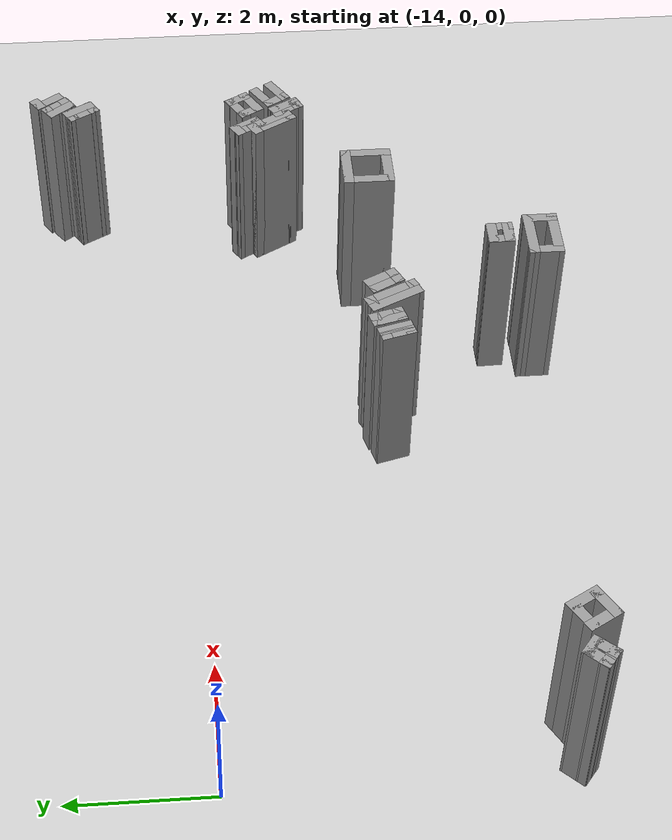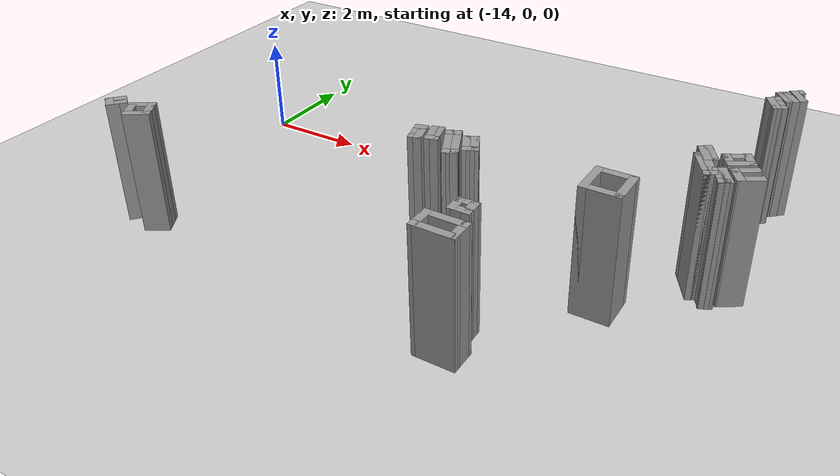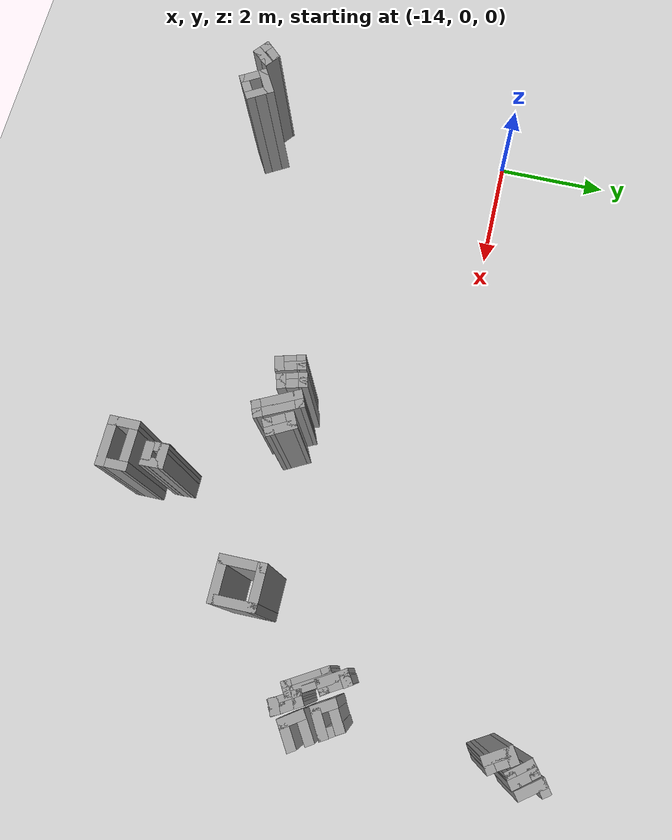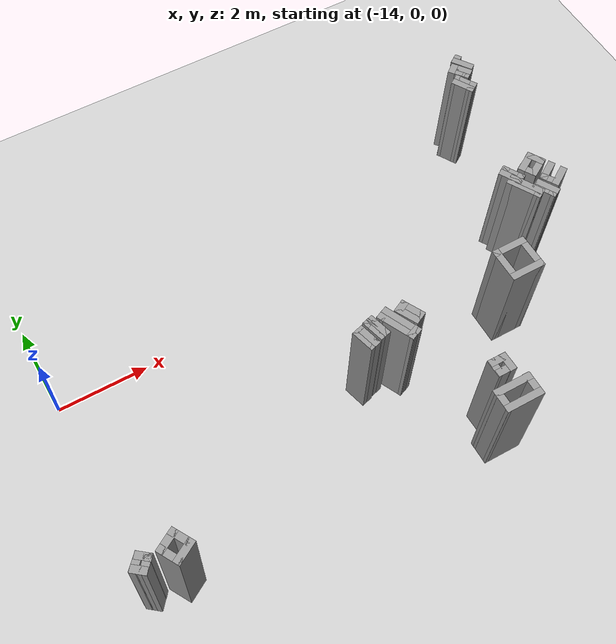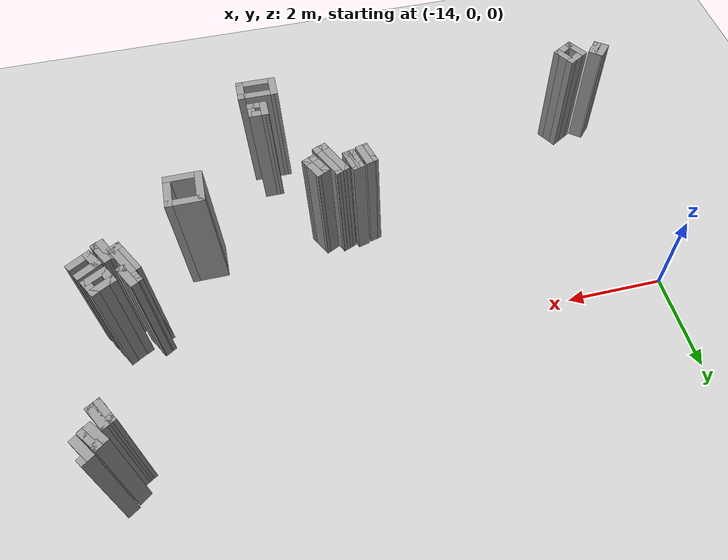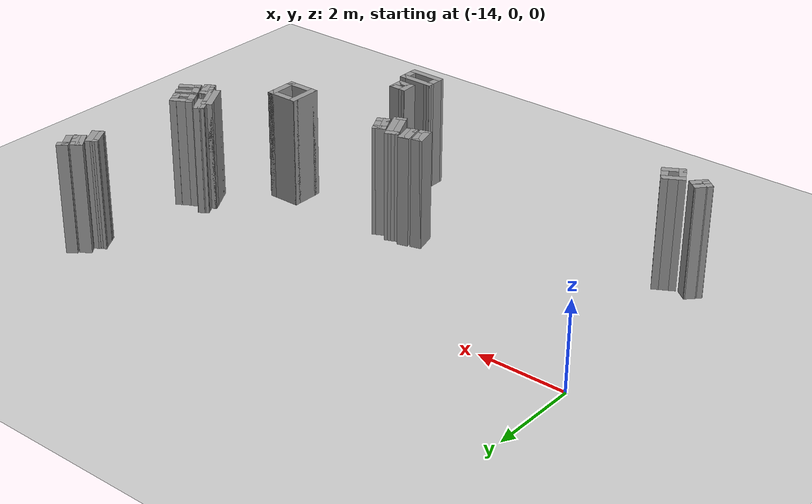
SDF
<sdf version="1.7">
 <world name="default">
  <include><uri>model://sun</uri></include>
  <include><uri>model://ground_plane</uri></include>
  <model name="iitj">
   <pose>-3.03973 -1.21048 0 0 -0 0</pose>
   <link name="Wall_103">
    <collision name="Wall_103_Collision">
     <geometry><box><size>0.5 0.15 2.5</size></box></geometry>
     <pose>0 0 1.25 0 -0 0</pose>
    </collision>
    <visual name="Wall_103_Visual">
     <pose>0 0 1.25 0 -0 0</pose>
     <geometry><box><size>0.5 0.15 2.5</size></box></geometry>
     <material>
      <script><uri>file://media/materials/scripts/gazebo.material</uri><name>Gazebo/Grey</name></script>
      <ambient>1 1 1 1</ambient>
     </material>
     <meta><layer>0</layer></meta>
    </visual>
    <pose>-5.3281 -1.4758 0 0 -0 -1.309</pose>
   </link>
   <link name="Wall_105">
    <collision name="Wall_105_Collision">
     <geometry><box><size>0.25 0.15 2.5</size></box></geometry>
     <pose>0 0 1.25 0 -0 0</pose>
    </collision>
    <visual name="Wall_105_Visual">
     <pose>0 0 1.25 0 -0 0</pose>
     <geometry><box><size>0.25 0.15 2.5</size></box></geometry>
     <material>
      <script><uri>file://media/materials/scripts/gazebo.material</uri><name>Gazebo/Grey</name></script>
      <ambient>1 1 1 1</ambient>
     </material>
     <meta><layer>0</layer></meta>
    </visual>
    <pose>-5.33111 -1.65777 0 0 -0 -2.87979</pose>
   </link>
   <link name="Wall_107">
    <collision name="Wall_107_Collision">
     <geometry><box><size>0.25 0.15 2.5</size></box></geometry>
     <pose>0 0 1.25 0 -0 0</pose>
    </collision>
    <visual name="Wall_107_Visual">
     <pose>0 0 1.25 0 -0 0</pose>
     <geometry><box><size>0.25 0.15 2.5</size></box></geometry>
     <material>
      <script><uri>file://media/materials/scripts/gazebo.material</uri><name>Gazebo/Grey</name></script>
      <ambient>1 1 1 1</ambient>
     </material>
     <meta><layer>0</layer></meta>
    </visual>
    <pose>-5.42169 -1.3197 0 0 -0 -2.87979</pose>
   </link>
   <link name="Wall_112">
    <collision name="Wall_112_Collision">
     <geometry><box><size>0.5 0.15 2.5</size></box></geometry>
     <pose>0 0 1.25 0 -0 0</pose>
    </collision>
    <visual name="Wall_112_Visual">
     <pose>0 0 1.25 0 -0 0</pose>
     <geometry><box><size>0.5 0.15 2.5</size></box></geometry>
     <material>
      <script><uri>file://media/materials/scripts/gazebo.material</uri><name>Gazebo/Grey</name></script>
      <ambient>1 1 1 1</ambient>
     </material>
     <meta><layer>0</layer></meta>
    </visual>
    <pose>-5.4247 -1.50168 0 0 -0 -1.309</pose>
   </link>
   <link name="Wall_116">
    <collision name="Wall_116_Collision">
     <geometry><box><size>0.5 0.15 2.5</size></box></geometry>
     <pose>0 0 1.25 0 -0 0</pose>
    </collision>
    <visual name="Wall_116_Visual">
     <pose>0 0 1.25 0 -0 0</pose>
     <geometry><box><size>0.5 0.15 2.5</size></box></geometry>
     <material>
      <script><uri>file://media/materials/scripts/gazebo.material</uri><name>Gazebo/Grey</name></script>
      <ambient>1 1 1 1</ambient>
     </material>
     <meta><layer>0</layer></meta>
    </visual>
    <pose>-5.14754 -1.40825 0 0 -0 -1.309</pose>
   </link>
   <link name="Wall_119">
    <collision name="Wall_119_Collision">
     <geometry><box><size>0.25 0.15 2.5</size></box></geometry>
     <pose>0 0 1.25 0 -0 0</pose>
    </collision>
    <visual name="Wall_119_Visual">
     <pose>0 0 1.25 0 -0 0</pose>
     <geometry><box><size>0.25 0.15 2.5</size></box></geometry>
     <material>
      <script><uri>file://media/materials/scripts/gazebo.material</uri><name>Gazebo/Grey</name></script>
      <ambient>1 1 1 1</ambient>
     </material>
     <meta><layer>0</layer></meta>
    </visual>
    <pose>-5.05395 -1.56434 0 0 -0 0.261799</pose>
   </link>
   <link name="Wall_122">
    <collision name="Wall_122_Collision">
     <geometry><box><size>0.25 0.15 2.5</size></box></geometry>
     <pose>0 0 1.25 0 -0 0</pose>
    </collision>
    <visual name="Wall_122_Visual">
     <pose>0 0 1.25 0 -0 0</pose>
     <geometry><box><size>0.25 0.15 2.5</size></box></geometry>
     <material>
      <script><uri>file://media/materials/scripts/gazebo.material</uri><name>Gazebo/Grey</name></script>
      <ambient>1 1 1 1</ambient>
     </material>
     <meta><layer>0</layer></meta>
    </visual>
    <pose>-5.14454 -1.22627 0 0 -0 0.261799</pose>
   </link>
   <link name="Wall_125">
    <collision name="Wall_125_Collision">
     <geometry><box><size>0.5 0.15 2.5</size></box></geometry>
     <pose>0 0 1.25 0 -0 0</pose>
    </collision>
    <visual name="Wall_125_Visual">
     <pose>0 0 1.25 0 -0 0</pose>
     <geometry><box><size>0.5 0.15 2.5</size></box></geometry>
     <material>
      <script><uri>file://media/materials/scripts/gazebo.material</uri><name>Gazebo/Grey</name></script>
      <ambient>1 1 1 1</ambient>
     </material>
     <meta><layer>0</layer></meta>
    </visual>
    <pose>-5.05095 -1.38237 0 0 -0 -1.309</pose>
   </link>
   <link name="Wall_133">
    <collision name="Wall_133_Collision">
     <geometry><box><size>0.295025 0.15 2.5</size></box></geometry>
     <pose>0 0 1.25 0 -0 0</pose>
    </collision>
    <visual name="Wall_133_Visual">
     <pose>0 0 1.25 0 -0 0</pose>
     <geometry><box><size>0.295025 0.15 2.5</size></box></geometry>
     <material>
      <script><uri>file://media/materials/scripts/gazebo.material</uri><name>Gazebo/Grey</name></script>
      <ambient>1 1 1 1</ambient>
     </material>
     <meta><layer>0</layer></meta>
    </visual>
    <pose>-4.82254 -1.21507 0 0 -0 0.398916</pose>
   </link>
   <link name="Wall_134">
    <collision name="Wall_134_Collision">
     <geometry><box><size>0.830581 0.15 2.5</size></box></geometry>
     <pose>0 0 1.25 0 -0 0</pose>
    </collision>
    <visual name="Wall_134_Visual">
     <pose>0 0 1.25 0 -0 0</pose>
     <geometry><box><size>0.830581 0.15 2.5</size></box></geometry>
     <material>
      <script><uri>file://media/materials/scripts/gazebo.material</uri><name>Gazebo/Grey</name></script>
      <ambient>1 1 1 1</ambient>
     </material>
     <meta><layer>0</layer></meta>
    </visual>
    <pose>-4.61057 -1.49469 0 0 -0 -1.13012</pose>
   </link>
   <link name="Wall_136">
    <collision name="Wall_136_Collision">
     <geometry><box><size>0.290148 0.15 2.5</size></box></geometry>
     <pose>0 0 1.25 0 -0 0</pose>
    </collision>
    <visual name="Wall_136_Visual">
     <pose>0 0 1.25 0 -0 0</pose>
     <geometry><box><size>0.290148 0.15 2.5</size></box></geometry>
     <material>
      <script><uri>file://media/materials/scripts/gazebo.material</uri><name>Gazebo/Grey</name></script>
      <ambient>1 1 1 1</ambient>
     </material>
     <meta><layer>0</layer></meta>
    </visual>
    <pose>-4.53037 -1.82503 0 0 -0 -2.75688</pose>
   </link>
   <link name="Wall_143">
    <collision name="Wall_143_Collision">
     <geometry><box><size>0.825451 0.15 2.5</size></box></geometry>
     <pose>0 0 1.25 0 -0 0</pose>
    </collision>
    <visual name="Wall_143_Visual">
     <pose>0 0 1.25 0 -0 0</pose>
     <geometry><box><size>0.825451 0.15 2.5</size></box></geometry>
     <material>
      <script><uri>file://media/materials/scripts/gazebo.material</uri><name>Gazebo/Grey</name></script>
      <ambient>1 1 1 1</ambient>
     </material>
     <meta><layer>0</layer></meta>
    </visual>
    <pose>-4.74235 -1.54728 0 0 -0 2.02119</pose>
   </link>
   <link name="Wall_149">
    <collision name="Wall_149_Collision">
     <geometry><box><size>0.293388 0.15 2.5</size></box></geometry>
     <pose>0 0 1.25 0 -0 0</pose>
    </collision>
    <visual name="Wall_149_Visual">
     <pose>0 0 1.25 0 -0 0</pose>
     <geometry><box><size>0.293388 0.15 2.5</size></box></geometry>
     <material>
      <script><uri>file://media/materials/scripts/gazebo.material</uri><name>Gazebo/Grey</name></script>
      <ambient>1 1 1 1</ambient>
     </material>
     <meta><layer>0</layer></meta>
    </visual>
    <pose>-4.45634 -1.2476 0 0 -0 -2.68679</pose>
   </link>
   <link name="Wall_152">
    <collision name="Wall_152_Collision">
     <geometry><box><size>0.521208 0.15 2.5</size></box></geometry>
     <pose>0 0 1.25 0 -0 0</pose>
    </collision>
    <visual name="Wall_152_Visual">
     <pose>0 0 1.25 0 -0 0</pose>
     <geometry><box><size>0.521208 0.15 2.5</size></box></geometry>
     <material>
      <script><uri>file://media/materials/scripts/gazebo.material</uri><name>Gazebo/Grey</name></script>
      <ambient>1 1 1 1</ambient>
     </material>
     <meta><layer>0</layer></meta>
    </visual>
    <pose>-4.30606 -1.38065 0 0 -0 -1.08977</pose>
   </link>
   <link name="Wall_155">
    <collision name="Wall_155_Collision">
     <geometry><box><size>0.293388 0.15 2.5</size></box></geometry>
     <pose>0 0 1.25 0 -0 0</pose>
    </collision>
    <visual name="Wall_155_Visual">
     <pose>0 0 1.25 0 -0 0</pose>
     <geometry><box><size>0.293388 0.15 2.5</size></box></geometry>
     <material>
      <script><uri>file://media/materials/scripts/gazebo.material</uri><name>Gazebo/Grey</name></script>
      <ambient>1 1 1 1</ambient>
     </material>
     <meta><layer>0</layer></meta>
    </visual>
    <pose>-4.28459 -1.57668 0 0 -0 -2.68679</pose>
   </link>
   <link name="Wall_158">
    <collision name="Wall_158_Collision">
     <geometry><box><size>0.518333 0.15 2.5</size></box></geometry>
     <pose>0 0 1.25 0 -0 0</pose>
    </collision>
    <visual name="Wall_158_Visual">
     <pose>0 0 1.25 0 -0 0</pose>
     <geometry><box><size>0.518333 0.15 2.5</size></box></geometry>
     <material>
      <script><uri>file://media/materials/scripts/gazebo.material</uri><name>Gazebo/Grey</name></script>
      <ambient>1 1 1 1</ambient>
     </material>
     <meta><layer>0</layer></meta>
    </visual>
    <pose>-4.43487 -1.44526 0 0 -0 -1.08569</pose>
   </link>
   <link name="Wall_160">
    <collision name="Wall_160_Collision">
     <geometry><box><size>0.313829 0.15 2.5</size></box></geometry>
     <pose>0 0 1.25 0 -0 0</pose>
    </collision>
    <visual name="Wall_160_Visual">
     <pose>0 0 1.25 0 -0 0</pose>
     <geometry><box><size>0.313829 0.15 2.5</size></box></geometry>
     <material>
      <script><uri>file://media/materials/scripts/gazebo.material</uri><name>Gazebo/Grey</name></script>
      <ambient>1 1 1 1</ambient>
     </material>
     <meta><layer>0</layer></meta>
    </visual>
    <pose>-10.952 -3.37651 0 0 -0 -0.664496</pose>
   </link>
   <link name="Wall_161">
    <collision name="Wall_161_Collision">
     <geometry><box><size>0.385698 0.15 2.5</size></box></geometry>
     <pose>0 0 1.25 0 -0 0</pose>
    </collision>
    <visual name="Wall_161_Visual">
     <pose>0 0 1.25 0 -0 0</pose>
     <geometry><box><size>0.385698 0.15 2.5</size></box></geometry>
     <material>
      <script><uri>file://media/materials/scripts/gazebo.material</uri><name>Gazebo/Grey</name></script>
      <ambient>1 1 1 1</ambient>
     </material>
     <meta><layer>0</layer></meta>
    </visual>
    <pose>-10.8056 -3.34282 0 0 -0 0.869723</pose>
   </link>
   <link name="Wall_162">
    <collision name="Wall_162_Collision">
     <geometry><box><size>0.314597 0.15 2.5</size></box></geometry>
     <pose>0 0 1.25 0 -0 0</pose>
    </collision>
    <visual name="Wall_162_Visual">
     <pose>0 0 1.25 0 -0 0</pose>
     <geometry><box><size>0.314597 0.15 2.5</size></box></geometry>
     <material>
      <script><uri>file://media/materials/scripts/gazebo.material</uri><name>Gazebo/Grey</name></script>
      <ambient>1 1 1 1</ambient>
     </material>
     <meta><layer>0</layer></meta>
    </visual>
    <pose>-10.7888 -3.20202 0 0 -0 2.4771</pose>
   </link>
   <link name="Wall_163">
    <collision name="Wall_163_Collision">
     <geometry><box><size>0.381027 0.15 2.5</size></box></geometry>
     <pose>0 0 1.25 0 -0 0</pose>
    </collision>
    <visual name="Wall_163_Visual">
     <pose>0 0 1.25 0 -0 0</pose>
     <geometry><box><size>0.381027 0.15 2.5</size></box></geometry>
     <material>
      <script><uri>file://media/materials/scripts/gazebo.material</uri><name>Gazebo/Grey</name></script>
      <ambient>1 1 1 1</ambient>
     </material>
     <meta><layer>0</layer></meta>
    </visual>
    <pose>-10.938 -3.2357 0 0 -0 -2.32182</pose>
   </link>
   <link name="Wall_165">
    <collision name="Wall_165_Collision">
     <geometry><box><size>0.5 0.15 2.5</size></box></geometry>
     <pose>0 0 1.25 0 -0 0</pose>
    </collision>
    <visual name="Wall_165_Visual">
     <pose>0 0 1.25 0 -0 0</pose>
     <geometry><box><size>0.5 0.15 2.5</size></box></geometry>
     <material>
      <script><uri>file://media/materials/scripts/gazebo.material</uri><name>Gazebo/Grey</name></script>
      <ambient>1 1 1 1</ambient>
     </material>
     <meta><layer>0</layer></meta>
    </visual>
    <pose>-3.87395 -3.78493 0 0 -0 -1.5708</pose>
   </link>
   <link name="Wall_166">
    <collision name="Wall_166_Collision">
     <geometry><box><size>0.817402 0.15 2.5</size></box></geometry>
     <pose>0 0 1.25 0 -0 0</pose>
    </collision>
    <visual name="Wall_166_Visual">
     <pose>0 0 1.25 0 -0 0</pose>
     <geometry><box><size>0.817402 0.15 2.5</size></box></geometry>
     <material>
      <script><uri>file://media/materials/scripts/gazebo.material</uri><name>Gazebo/Grey</name></script>
      <ambient>1 1 1 1</ambient>
     </material>
     <meta><layer>0</layer></meta>
    </visual>
    <pose>-3.54026 -3.96274 0 0 -0 -0.008413</pose>
   </link>
   <link name="Wall_167">
    <collision name="Wall_167_Collision">
     <geometry><box><size>0.5 0.15 2.5</size></box></geometry>
     <pose>0 0 1.25 0 -0 0</pose>
    </collision>
    <visual name="Wall_167_Visual">
     <pose>0 0 1.25 0 -0 0</pose>
     <geometry><box><size>0.5 0.15 2.5</size></box></geometry>
     <material>
      <script><uri>file://media/materials/scripts/gazebo.material</uri><name>Gazebo/Grey</name></script>
      <ambient>1 1 1 1</ambient>
     </material>
     <meta><layer>0</layer></meta>
    </visual>
    <pose>-3.20657 -3.78493 0 0 -0 1.5708</pose>
   </link>
   <link name="Wall_168">
    <collision name="Wall_168_Collision">
     <geometry><box><size>0.817402 0.15 2.5</size></box></geometry>
     <pose>0 0 1.25 0 -0 0</pose>
    </collision>
    <visual name="Wall_168_Visual">
     <pose>0 0 1.25 0 -0 0</pose>
     <geometry><box><size>0.817402 0.15 2.5</size></box></geometry>
     <material>
      <script><uri>file://media/materials/scripts/gazebo.material</uri><name>Gazebo/Grey</name></script>
      <ambient>1 1 1 1</ambient>
     </material>
     <meta><layer>0</layer></meta>
    </visual>
    <pose>-3.54026 -3.61274 0 0 -0 3.13318</pose>
   </link>
   <link name="Wall_170">
    <collision name="Wall_170_Collision">
     <geometry><box><size>0.379211 0.15 2.5</size></box></geometry>
     <pose>0 0 1.25 0 -0 0</pose>
    </collision>
    <visual name="Wall_170_Visual">
     <pose>0 0 1.25 0 -0 0</pose>
     <geometry><box><size>0.379211 0.15 2.5</size></box></geometry>
     <material>
      <script><uri>file://media/materials/scripts/gazebo.material</uri><name>Gazebo/Grey</name></script>
      <ambient>1 1 1 1</ambient>
     </material>
     <meta><layer>0</layer></meta>
    </visual>
    <pose>-3.61336 -3.17986 0 0 -0 -1.5463</pose>
   </link>
   <link name="Wall_171">
    <collision name="Wall_171_Collision">
     <geometry><box><size>0.394326 0.15 2.5</size></box></geometry>
     <pose>0 0 1.25 0 -0 0</pose>
    </collision>
    <visual name="Wall_171_Visual">
     <pose>0 0 1.25 0 -0 0</pose>
     <geometry><box><size>0.394326 0.15 2.5</size></box></geometry>
     <material>
      <script><uri>file://media/materials/scripts/gazebo.material</uri><name>Gazebo/Grey</name></script>
      <ambient>1 1 1 1</ambient>
     </material>
     <meta><layer>0</layer></meta>
    </visual>
    <pose>-3.47766 -3.29443 0 0 -0 0</pose>
   </link>
   <link name="Wall_172">
    <collision name="Wall_172_Collision">
     <geometry><box><size>0.379211 0.15 2.5</size></box></geometry>
     <pose>0 0 1.25 0 -0 0</pose>
    </collision>
    <visual name="Wall_172_Visual">
     <pose>0 0 1.25 0 -0 0</pose>
     <geometry><box><size>0.379211 0.15 2.5</size></box></geometry>
     <material>
      <script><uri>file://media/materials/scripts/gazebo.material</uri><name>Gazebo/Grey</name></script>
      <ambient>1 1 1 1</ambient>
     </material>
     <meta><layer>0</layer></meta>
    </visual>
    <pose>-3.35831 -3.18548 0 0 -0 1.59529</pose>
   </link>
   <link name="Wall_173">
    <collision name="Wall_173_Collision">
     <geometry><box><size>0.394326 0.15 2.5</size></box></geometry>
     <pose>0 0 1.25 0 -0 0</pose>
    </collision>
    <visual name="Wall_173_Visual">
     <pose>0 0 1.25 0 -0 0</pose>
     <geometry><box><size>0.394326 0.15 2.5</size></box></geometry>
     <material>
      <script><uri>file://media/materials/scripts/gazebo.material</uri><name>Gazebo/Grey</name></script>
      <ambient>1 1 1 1</ambient>
     </material>
     <meta><layer>0</layer></meta>
    </visual>
    <pose>-3.48328 -3.06529 0 0 -0 3.14159</pose>
   </link>
   <link name="Wall_175">
    <collision name="Wall_175_Collision">
     <geometry><box><size>0.75 0.15 2.5</size></box></geometry>
     <pose>0 0 1.25 0 -0 0</pose>
    </collision>
    <visual name="Wall_175_Visual">
     <pose>0 0 1.25 0 -0 0</pose>
     <geometry><box><size>0.75 0.15 2.5</size></box></geometry>
     <material>
      <script><uri>file://media/materials/scripts/gazebo.material</uri><name>Gazebo/Grey</name></script>
      <ambient>1 1 1 1</ambient>
     </material>
     <meta><layer>0</layer></meta>
    </visual>
    <pose>-2.16502 -1.42542 0 0 -0 -1.5708</pose>
   </link>
   <link name="Wall_176">
    <collision name="Wall_176_Collision">
     <geometry><box><size>0.75 0.15 2.5</size></box></geometry>
     <pose>0 0 1.25 0 -0 0</pose>
    </collision>
    <visual name="Wall_176_Visual">
     <pose>0 0 1.25 0 -0 0</pose>
     <geometry><box><size>0.75 0.15 2.5</size></box></geometry>
     <material>
      <script><uri>file://media/materials/scripts/gazebo.material</uri><name>Gazebo/Grey</name></script>
      <ambient>1 1 1 1</ambient>
     </material>
     <meta><layer>0</layer></meta>
    </visual>
    <pose>-1.86502 -1.72542 0 0 -0 0</pose>
   </link>
   <link name="Wall_177">
    <collision name="Wall_177_Collision">
     <geometry><box><size>0.75 0.15 2.5</size></box></geometry>
     <pose>0 0 1.25 0 -0 0</pose>
    </collision>
    <visual name="Wall_177_Visual">
     <pose>0 0 1.25 0 -0 0</pose>
     <geometry><box><size>0.75 0.15 2.5</size></box></geometry>
     <material>
      <script><uri>file://media/materials/scripts/gazebo.material</uri><name>Gazebo/Grey</name></script>
      <ambient>1 1 1 1</ambient>
     </material>
     <meta><layer>0</layer></meta>
    </visual>
    <pose>-1.56502 -1.42542 0 0 -0 1.5708</pose>
   </link>
   <link name="Wall_178">
    <collision name="Wall_178_Collision">
     <geometry><box><size>0.75 0.15 2.5</size></box></geometry>
     <pose>0 0 1.25 0 -0 0</pose>
    </collision>
    <visual name="Wall_178_Visual">
     <pose>0 0 1.25 0 -0 0</pose>
     <geometry><box><size>0.75 0.15 2.5</size></box></geometry>
     <material>
      <script><uri>file://media/materials/scripts/gazebo.material</uri><name>Gazebo/Grey</name></script>
      <ambient>1 1 1 1</ambient>
     </material>
     <meta><layer>0</layer></meta>
    </visual>
    <pose>-1.86502 -1.12542 0 0 -0 3.14159</pose>
   </link>
   <link name="Wall_266">
    <collision name="Wall_266_Collision">
     <geometry><box><size>0.75 0.15 2.5</size></box></geometry>
     <pose>0 0 1.25 0 -0 0</pose>
    </collision>
    <visual name="Wall_266_Visual">
     <pose>0 0 1.25 0 -0 0</pose>
     <geometry><box><size>0.75 0.15 2.5</size></box></geometry>
     <material>
      <script><uri>file://media/materials/scripts/gazebo.material</uri><name>Gazebo/Grey</name></script>
      <ambient>1 1 1 1</ambient>
     </material>
     <meta><layer>0</layer></meta>
    </visual>
    <pose>-0.680598 -0.051852 0 0 -0 -1.0472</pose>
   </link>
   <link name="Wall_268">
    <collision name="Wall_268_Collision">
     <geometry><box><size>0.25 0.15 2.5</size></box></geometry>
     <pose>0 0 1.25 0 -0 0</pose>
    </collision>
    <visual name="Wall_268_Visual">
     <pose>0 0 1.25 0 -0 0</pose>
     <geometry><box><size>0.25 0.15 2.5</size></box></geometry>
     <material>
      <script><uri>file://media/materials/scripts/gazebo.material</uri><name>Gazebo/Grey</name></script>
      <ambient>1 1 1 1</ambient>
     </material>
     <meta><layer>0</layer></meta>
    </visual>
    <pose>-0.873899 0.182956 0 0 -0 -2.61799</pose>
   </link>
   <link name="Wall_270">
    <collision name="Wall_270_Collision">
     <geometry><box><size>0.25 0.15 2.5</size></box></geometry>
     <pose>0 0 1.25 0 -0 0</pose>
    </collision>
    <visual name="Wall_270_Visual">
     <pose>0 0 1.25 0 -0 0</pose>
     <geometry><box><size>0.25 0.15 2.5</size></box></geometry>
     <material>
      <script><uri>file://media/materials/scripts/gazebo.material</uri><name>Gazebo/Grey</name></script>
      <ambient>1 1 1 1</ambient>
     </material>
     <meta><layer>0</layer></meta>
    </visual>
    <pose>-0.573899 -0.336659 0 0 -0 -2.61799</pose>
   </link>
   <link name="Wall_274">
    <collision name="Wall_274_Collision">
     <geometry><box><size>0.75 0.15 2.5</size></box></geometry>
     <pose>0 0 1.25 0 -0 0</pose>
    </collision>
    <visual name="Wall_274_Visual">
     <pose>0 0 1.25 0 -0 0</pose>
     <geometry><box><size>0.75 0.15 2.5</size></box></geometry>
     <material>
      <script><uri>file://media/materials/scripts/gazebo.material</uri><name>Gazebo/Grey</name></script>
      <ambient>1 1 1 1</ambient>
     </material>
     <meta><layer>0</layer></meta>
    </visual>
    <pose>-0.7672 -0.101852 0 0 -0 -1.0472</pose>
   </link>
   <link name="Wall_276">
    <collision name="Wall_276_Collision">
     <geometry><box><size>0.5 0.15 2.5</size></box></geometry>
     <pose>0 0 1.25 0 -0 0</pose>
    </collision>
    <visual name="Wall_276_Visual">
     <pose>0 0 1.25 0 -0 0</pose>
     <geometry><box><size>0.5 0.15 2.5</size></box></geometry>
     <material>
      <script><uri>file://media/materials/scripts/gazebo.material</uri><name>Gazebo/Grey</name></script>
      <ambient>1 1 1 1</ambient>
     </material>
     <meta><layer>0</layer></meta>
    </visual>
    <pose>-0.845379 0.266347 0 0 -0 -1.0472</pose>
   </link>
   <link name="Wall_277">
    <collision name="Wall_277_Collision">
     <geometry><box><size>0.252797 0.15 2.5</size></box></geometry>
     <pose>0 0 1.25 0 -0 0</pose>
    </collision>
    <visual name="Wall_277_Visual">
     <pose>0 0 1.25 0 -0 0</pose>
     <geometry><box><size>0.252797 0.15 2.5</size></box></geometry>
     <material>
      <script><uri>file://media/materials/scripts/gazebo.material</uri><name>Gazebo/Grey</name></script>
      <ambient>1 1 1 1</ambient>
     </material>
     <meta><layer>0</layer></meta>
    </visual>
    <pose>-0.714577 0.142484 0 0 -0 0.568966</pose>
   </link>
   <link name="Wall_278">
    <collision name="Wall_278_Collision">
     <geometry><box><size>0.5 0.15 2.5</size></box></geometry>
     <pose>0 0 1.25 0 -0 0</pose>
    </collision>
    <visual name="Wall_278_Visual">
     <pose>0 0 1.25 0 -0 0</pose>
     <geometry><box><size>0.5 0.15 2.5</size></box></geometry>
     <material>
      <script><uri>file://media/materials/scripts/gazebo.material</uri><name>Gazebo/Grey</name></script>
      <ambient>1 1 1 1</ambient>
     </material>
     <meta><layer>0</layer></meta>
    </visual>
    <pose>-0.764159 0.32173 0 0 -0 2.0944</pose>
   </link>
   <link name="Wall_279">
    <collision name="Wall_279_Collision">
     <geometry><box><size>0.252797 0.15 2.5</size></box></geometry>
     <pose>0 0 1.25 0 -0 0</pose>
    </collision>
    <visual name="Wall_279_Visual">
     <pose>0 0 1.25 0 -0 0</pose>
     <geometry><box><size>0.252797 0.15 2.5</size></box></geometry>
     <material>
      <script><uri>file://media/materials/scripts/gazebo.material</uri><name>Gazebo/Grey</name></script>
      <ambient>1 1 1 1</ambient>
     </material>
     <meta><layer>0</layer></meta>
    </visual>
    <pose>-0.889577 0.445593 0 0 -0 -2.57263</pose>
   </link>
   <link name="Wall_281">
    <collision name="Wall_281_Collision">
     <geometry><box><size>0.5 0.15 2.5</size></box></geometry>
     <pose>0 0 1.25 0 -0 0</pose>
    </collision>
    <visual name="Wall_281_Visual">
     <pose>0 0 1.25 0 -0 0</pose>
     <geometry><box><size>0.5 0.15 2.5</size></box></geometry>
     <material>
      <script><uri>file://media/materials/scripts/gazebo.material</uri><name>Gazebo/Grey</name></script>
      <ambient>1 1 1 1</ambient>
     </material>
     <meta><layer>0</layer></meta>
    </visual>
    <pose>-0.337178 -0.296047 0 0 -0 -1.0472</pose>
   </link>
   <link name="Wall_282">
    <collision name="Wall_282_Collision">
     <geometry><box><size>0.248039 0.15 2.5</size></box></geometry>
     <pose>0 0 1.25 0 -0 0</pose>
    </collision>
    <visual name="Wall_282_Visual">
     <pose>0 0 1.25 0 -0 0</pose>
     <geometry><box><size>0.248039 0.15 2.5</size></box></geometry>
     <material>
      <script><uri>file://media/materials/scripts/gazebo.material</uri><name>Gazebo/Grey</name></script>
      <ambient>1 1 1 1</ambient>
     </material>
     <meta><layer>0</layer></meta>
    </visual>
    <pose>-0.29905 -0.46653 0 0 -0 -2.74599</pose>
   </link>
   <link name="Wall_283">
    <collision name="Wall_283_Collision">
     <geometry><box><size>0.5 0.15 2.5</size></box></geometry>
     <pose>0 0 1.25 0 -0 0</pose>
    </collision>
    <visual name="Wall_283_Visual">
     <pose>0 0 1.25 0 -0 0</pose>
     <geometry><box><size>0.5 0.15 2.5</size></box></geometry>
     <material>
      <script><uri>file://media/materials/scripts/gazebo.material</uri><name>Gazebo/Grey</name></script>
      <ambient>1 1 1 1</ambient>
     </material>
     <meta><layer>0</layer></meta>
    </visual>
    <pose>-0.427828 -0.337952 0 0 -0 2.0944</pose>
   </link>
   <link name="Wall_284">
    <collision name="Wall_284_Collision">
     <geometry><box><size>0.248039 0.15 2.5</size></box></geometry>
     <pose>0 0 1.25 0 -0 0</pose>
    </collision>
    <visual name="Wall_284_Visual">
     <pose>0 0 1.25 0 -0 0</pose>
     <geometry><box><size>0.248039 0.15 2.5</size></box></geometry>
     <material>
      <script><uri>file://media/materials/scripts/gazebo.material</uri><name>Gazebo/Grey</name></script>
      <ambient>1 1 1 1</ambient>
     </material>
     <meta><layer>0</layer></meta>
    </visual>
    <pose>-0.47405 -0.163421 0 0 -0 0.395605</pose>
   </link>
   <link name="Wall_289">
    <collision name="Wall_289_Collision">
     <geometry><box><size>0.411103 0.15 2.5</size></box></geometry>
     <pose>0 0 1.25 0 -0 0</pose>
    </collision>
    <visual name="Wall_289_Visual">
     <pose>0 0 1.25 0 -0 0</pose>
     <geometry><box><size>0.411103 0.15 2.5</size></box></geometry>
     <material>
      <script><uri>file://media/materials/scripts/gazebo.material</uri><name>Gazebo/Grey</name></script>
      <ambient>1 1 1 1</ambient>
     </material>
     <meta><layer>0</layer></meta>
    </visual>
    <pose>-0.183298 -0.181328 0 0 -0 -0.978647</pose>
   </link>
   <link name="Wall_290">
    <collision name="Wall_290_Collision">
     <geometry><box><size>0.495943 0.15 2.5</size></box></geometry>
     <pose>0 0 1.25 0 -0 0</pose>
    </collision>
    <visual name="Wall_290_Visual">
     <pose>0 0 1.25 0 -0 0</pose>
     <geometry><box><size>0.495943 0.15 2.5</size></box></geometry>
     <material>
      <script><uri>file://media/materials/scripts/gazebo.material</uri><name>Gazebo/Grey</name></script>
      <ambient>1 1 1 1</ambient>
     </material>
     <meta><layer>0</layer></meta>
    </visual>
    <pose>0.031484 -0.202457 0 0 -0 0.559799</pose>
   </link>
   <link name="Wall_292">
    <collision name="Wall_292_Collision">
     <geometry><box><size>0.495943 0.15 2.5</size></box></geometry>
     <pose>0 0 1.25 0 -0 0</pose>
    </collision>
    <visual name="Wall_292_Visual">
     <pose>0 0 1.25 0 -0 0</pose>
     <geometry><box><size>0.495943 0.15 2.5</size></box></geometry>
     <material>
      <script><uri>file://media/materials/scripts/gazebo.material</uri><name>Gazebo/Grey</name></script>
      <ambient>1 1 1 1</ambient>
     </material>
     <meta><layer>0</layer></meta>
    </visual>
    <pose>-0.104941 0.028156 0 0 -0 -2.58179</pose>
   </link>
   <link name="Wall_294">
    <collision name="Wall_294_Collision">
     <geometry><box><size>0.5 0.15 2.5</size></box></geometry>
     <pose>0 0 1.25 0 -0 0</pose>
    </collision>
    <visual name="Wall_294_Visual">
     <pose>0 0 1.25 0 -0 0</pose>
     <geometry><box><size>0.5 0.15 2.5</size></box></geometry>
     <material>
      <script><uri>file://media/materials/scripts/gazebo.material</uri><name>Gazebo/Grey</name></script>
      <ambient>1 1 1 1</ambient>
     </material>
     <meta><layer>0</layer></meta>
    </visual>
    <pose>-0.21904 0.212663 0 0 -0 -2.61799</pose>
   </link>
   <link name="Wall_295">
    <collision name="Wall_295_Collision">
     <geometry><box><size>0.40085 0.15 2.5</size></box></geometry>
     <pose>0 0 1.25 0 -0 0</pose>
    </collision>
    <visual name="Wall_295_Visual">
     <pose>0 0 1.25 0 -0 0</pose>
     <geometry><box><size>0.40085 0.15 2.5</size></box></geometry>
     <material>
      <script><uri>file://media/materials/scripts/gazebo.material</uri><name>Gazebo/Grey</name></script>
      <ambient>1 1 1 1</ambient>
     </material>
     <meta><layer>0</layer></meta>
    </visual>
    <pose>-0.440252 0.233895 0 0 -0 2.09263</pose>
   </link>
   <link name="Wall_296">
    <collision name="Wall_296_Collision">
     <geometry><box><size>0.5 0.15 2.5</size></box></geometry>
     <pose>0 0 1.25 0 -0 0</pose>
    </collision>
    <visual name="Wall_296_Visual">
     <pose>0 0 1.25 0 -0 0</pose>
     <geometry><box><size>0.5 0.15 2.5</size></box></geometry>
     <material>
      <script><uri>file://media/materials/scripts/gazebo.material</uri><name>Gazebo/Grey</name></script>
      <ambient>1 1 1 1</ambient>
     </material>
     <meta><layer>0</layer></meta>
    </visual>
    <pose>-0.351217 0.42299 0 0 -0 0.523599</pose>
   </link>
   <link name="Wall_297">
    <collision name="Wall_297_Collision">
     <geometry><box><size>0.40085 0.15 2.5</size></box></geometry>
     <pose>0 0 1.25 0 -0 0</pose>
    </collision>
    <visual name="Wall_297_Visual">
     <pose>0 0 1.25 0 -0 0</pose>
     <geometry><box><size>0.40085 0.15 2.5</size></box></geometry>
     <material>
      <script><uri>file://media/materials/scripts/gazebo.material</uri><name>Gazebo/Grey</name></script>
      <ambient>1 1 1 1</ambient>
     </material>
     <meta><layer>0</layer></meta>
    </visual>
    <pose>-0.137143 0.408895 0 0 -0 -1.04897</pose>
   </link>
   <link name="Wall_311">
    <collision name="Wall_311_Collision">
     <geometry><box><size>0.5 0.15 2.5</size></box></geometry>
     <pose>0 0 1.25 0 -0 0</pose>
    </collision>
    <visual name="Wall_311_Visual">
     <pose>0 0 1.25 0 -0 0</pose>
     <geometry><box><size>0.5 0.15 2.5</size></box></geometry>
     <material>
      <script><uri>file://media/materials/scripts/gazebo.material</uri><name>Gazebo/Grey</name></script>
      <ambient>1 1 1 1</ambient>
     </material>
     <meta><layer>0</layer></meta>
    </visual>
    <pose>-0.328507 2.7855 0 0 -0 -1.0472</pose>
   </link>
   <link name="Wall_312">
    <collision name="Wall_312_Collision">
     <geometry><box><size>0.275747 0.15 2.5</size></box></geometry>
     <pose>0 0 1.25 0 -0 0</pose>
    </collision>
    <visual name="Wall_312_Visual">
     <pose>0 0 1.25 0 -0 0</pose>
     <geometry><box><size>0.275747 0.15 2.5</size></box></geometry>
     <material>
      <script><uri>file://media/materials/scripts/gazebo.material</uri><name>Gazebo/Grey</name></script>
      <ambient>1 1 1 1</ambient>
     </material>
     <meta><layer>0</layer></meta>
    </visual>
    <pose>-0.18835 2.6683 0 0 -0 0.578092</pose>
   </link>
   <link name="Wall_313">
    <collision name="Wall_313_Collision">
     <geometry><box><size>0.5 0.15 2.5</size></box></geometry>
     <pose>0 0 1.25 0 -0 0</pose>
    </collision>
    <visual name="Wall_313_Visual">
     <pose>0 0 1.25 0 -0 0</pose>
     <geometry><box><size>0.5 0.15 2.5</size></box></geometry>
     <material>
      <script><uri>file://media/materials/scripts/gazebo.material</uri><name>Gazebo/Grey</name></script>
      <ambient>1 1 1 1</ambient>
     </material>
     <meta><layer>0</layer></meta>
    </visual>
    <pose>-0.22787 2.84953 0 0 -0 2.0944</pose>
   </link>
   <link name="Wall_314">
    <collision name="Wall_314_Collision">
     <geometry><box><size>0.275747 0.15 2.5</size></box></geometry>
     <pose>0 0 1.25 0 -0 0</pose>
    </collision>
    <visual name="Wall_314_Visual">
     <pose>0 0 1.25 0 -0 0</pose>
     <geometry><box><size>0.275747 0.15 2.5</size></box></geometry>
     <material>
      <script><uri>file://media/materials/scripts/gazebo.material</uri><name>Gazebo/Grey</name></script>
      <ambient>1 1 1 1</ambient>
     </material>
     <meta><layer>0</layer></meta>
    </visual>
    <pose>-0.36335 2.97141 0 0 -0 -2.5635</pose>
   </link>
   <link name="Wall_365">
    <collision name="Wall_365_Collision">
     <geometry><box><size>0.459612 0.15 2.5</size></box></geometry>
     <pose>0 0 1.25 0 -0 0</pose>
    </collision>
    <visual name="Wall_365_Visual">
     <pose>0 0 1.25 0 -0 0</pose>
     <geometry><box><size>0.459612 0.15 2.5</size></box></geometry>
     <material>
      <script><uri>file://media/materials/scripts/gazebo.material</uri><name>Gazebo/Grey</name></script>
      <ambient>1 1 1 1</ambient>
     </material>
     <meta><layer>0</layer></meta>
    </visual>
    <pose>-0.201903 3.12628 0 0 -0 -0.917083</pose>
   </link>
   <link name="Wall_366">
    <collision name="Wall_366_Collision">
     <geometry><box><size>0.268984 0.15 2.5</size></box></geometry>
     <pose>0 0 1.25 0 -0 0</pose>
    </collision>
    <visual name="Wall_366_Visual">
     <pose>0 0 1.25 0 -0 0</pose>
     <geometry><box><size>0.268984 0.15 2.5</size></box></geometry>
     <material>
      <script><uri>file://media/materials/scripts/gazebo.material</uri><name>Gazebo/Grey</name></script>
      <ambient>1 1 1 1</ambient>
     </material>
     <meta><layer>0</layer></meta>
    </visual>
    <pose>-0.060349 3.03933 0 0 -0 0.648599</pose>
   </link>
   <link name="Wall_367">
    <collision name="Wall_367_Collision">
     <geometry><box><size>0.46709 0.15 2.5</size></box></geometry>
     <pose>0 0 1.25 0 -0 0</pose>
    </collision>
    <visual name="Wall_367_Visual">
     <pose>0 0 1.25 0 -0 0</pose>
     <geometry><box><size>0.46709 0.15 2.5</size></box></geometry>
     <material>
      <script><uri>file://media/materials/scripts/gazebo.material</uri><name>Gazebo/Grey</name></script>
      <ambient>1 1 1 1</ambient>
     </material>
     <meta><layer>0</layer></meta>
    </visual>
    <pose>-0.10708 3.19348 0 0 -0 2.20656</pose>
   </link>
   <link name="Wall_368">
    <collision name="Wall_368_Collision">
     <geometry><box><size>0.268984 0.15 2.5</size></box></geometry>
     <pose>0 0 1.25 0 -0 0</pose>
    </collision>
    <visual name="Wall_368_Visual">
     <pose>0 0 1.25 0 -0 0</pose>
     <geometry><box><size>0.268984 0.15 2.5</size></box></geometry>
     <material>
      <script><uri>file://media/materials/scripts/gazebo.material</uri><name>Gazebo/Grey</name></script>
      <ambient>1 1 1 1</ambient>
     </material>
     <meta><layer>0</layer></meta>
    </visual>
    <pose>-0.254752 3.28816 0 0 -0 -2.49299</pose>
   </link>
   <link name="Wall_370">
    <collision name="Wall_370_Collision">
     <geometry><box><size>0.479969 0.15 2.5</size></box></geometry>
     <pose>0 0 1.25 0 -0 0</pose>
    </collision>
    <visual name="Wall_370_Visual">
     <pose>0 0 1.25 0 -0 0</pose>
     <geometry><box><size>0.479969 0.15 2.5</size></box></geometry>
     <material>
      <script><uri>file://media/materials/scripts/gazebo.material</uri><name>Gazebo/Grey</name></script>
      <ambient>1 1 1 1</ambient>
     </material>
     <meta><layer>0</layer></meta>
    </visual>
    <pose>0.010235 3.31378 0 0 -0 -0.947581</pose>
   </link>
   <link name="Wall_373">
    <collision name="Wall_373_Collision">
     <geometry><box><size>0.248576 0.15 2.5</size></box></geometry>
     <pose>0 0 1.25 0 -0 0</pose>
    </collision>
    <visual name="Wall_373_Visual">
     <pose>0 0 1.25 0 -0 0</pose>
     <geometry><box><size>0.248576 0.15 2.5</size></box></geometry>
     <material>
      <script><uri>file://media/materials/scripts/gazebo.material</uri><name>Gazebo/Grey</name></script>
      <ambient>1 1 1 1</ambient>
     </material>
     <meta><layer>0</layer></meta>
    </visual>
    <pose>-0.045296 3.47897 0 0 -0 -2.5446</pose>
   </link>
   <link name="Wall_62">
    <collision name="Wall_62_Collision">
     <geometry><box><size>0.5 0.15 2.5</size></box></geometry>
     <pose>0 0 1.25 0 -0 0</pose>
    </collision>
    <visual name="Wall_62_Visual">
     <pose>0 0 1.25 0 -0 0</pose>
     <geometry><box><size>0.5 0.15 2.5</size></box></geometry>
     <material>
      <script><uri>file://media/materials/scripts/gazebo.material</uri><name>Gazebo/Grey</name></script>
      <ambient>1 1 1 1</ambient>
     </material>
     <meta><layer>0</layer></meta>
    </visual>
    <pose>-10.389 -3.4009 0 0 -0 -1.0472</pose>
   </link>
   <link name="Wall_63">
    <collision name="Wall_63_Collision">
     <geometry><box><size>0.5 0.15 2.5</size></box></geometry>
     <pose>0 0 1.25 0 -0 0</pose>
    </collision>
    <visual name="Wall_63_Visual">
     <pose>0 0 1.25 0 -0 0</pose>
     <geometry><box><size>0.5 0.15 2.5</size></box></geometry>
     <material>
      <script><uri>file://media/materials/scripts/gazebo.material</uri><name>Gazebo/Grey</name></script>
      <ambient>1 1 1 1</ambient>
     </material>
     <meta><layer>0</layer></meta>
    </visual>
    <pose>-10.1499 -3.46495 0 0 -0 0.523599</pose>
   </link>
   <link name="Wall_64">
    <collision name="Wall_64_Collision">
     <geometry><box><size>0.5 0.15 2.5</size></box></geometry>
     <pose>0 0 1.25 0 -0 0</pose>
    </collision>
    <visual name="Wall_64_Visual">
     <pose>0 0 1.25 0 -0 0</pose>
     <geometry><box><size>0.5 0.15 2.5</size></box></geometry>
     <material>
      <script><uri>file://media/materials/scripts/gazebo.material</uri><name>Gazebo/Grey</name></script>
      <ambient>1 1 1 1</ambient>
     </material>
     <meta><layer>0</layer></meta>
    </visual>
    <pose>-10.0859 -3.2259 0 0 -0 2.0944</pose>
   </link>
   <link name="Wall_65">
    <collision name="Wall_65_Collision">
     <geometry><box><size>0.5 0.15 2.5</size></box></geometry>
     <pose>0 0 1.25 0 -0 0</pose>
    </collision>
    <visual name="Wall_65_Visual">
     <pose>0 0 1.25 0 -0 0</pose>
     <geometry><box><size>0.5 0.15 2.5</size></box></geometry>
     <material>
      <script><uri>file://media/materials/scripts/gazebo.material</uri><name>Gazebo/Grey</name></script>
      <ambient>1 1 1 1</ambient>
     </material>
     <meta><layer>0</layer></meta>
    </visual>
    <pose>-10.3249 -3.16184 0 0 -0 -2.61799</pose>
   </link>
   <static>1</static>
  </model>
 </world>
</sdf>
